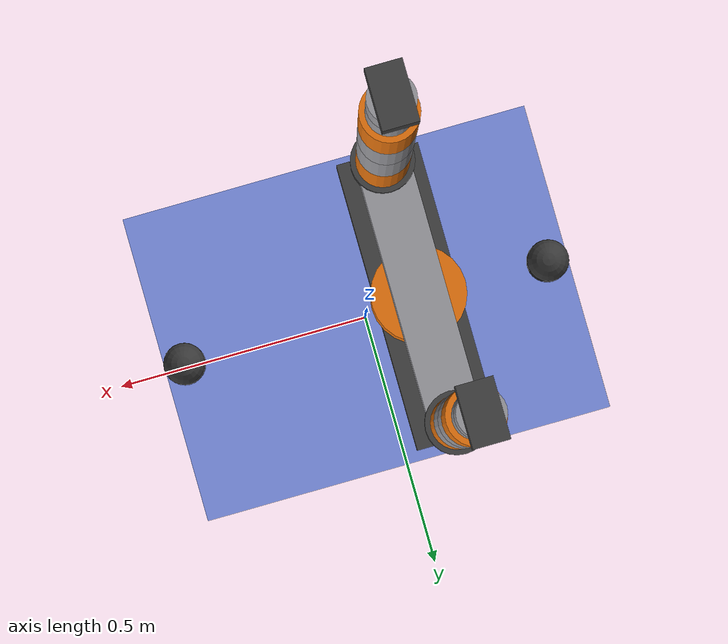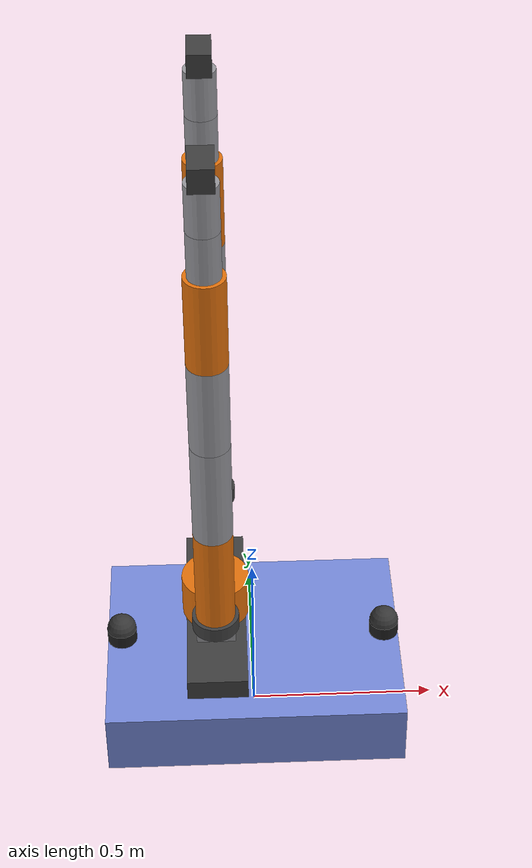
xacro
<?xml version="1.0"?>
<robot xmlns:xacro="http://www.ros.org/wiki/xacro" name="dualarm_agv">
  <!-- 组合描述:底盘宏(复用 simulated_chassis)+ 双 7 轴臂 + 2 轴腰上装 -->
  <xacro:include filename="$(find simulated_chassis)/urdf/three_wheel_chassis_3d_macro.xacro"/>
  <xacro:include filename="$(find simulated_dual_arm)/urdf/dual_arm_macro.xacro"/>
  <xacro:three_wheel_chassis_3d lidar_collisions="true"/>
  <xacro:dual_arm_rig/>
</robot>

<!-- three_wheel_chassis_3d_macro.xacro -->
<robot xmlns:xacro="http://www.ros.org/wiki/xacro">
  <!-- Shared 3D chassis, also composed by the UR5e simulation profile. -->
  <xacro:macro name="three_wheel_lidar_collision" params="">
    <collision>
      <origin xyz="0 0 0.02"/><geometry><cylinder radius="0.04" length="0.04"/></geometry>
    </collision>
    <collision>
      <origin xyz="0 0 0.04"/><geometry><sphere radius="0.04"/></geometry>
    </collision>
  </xacro:macro>
  <xacro:macro name="three_wheel_chassis_3d" params="controllers_file:='$(find simulated_chassis)/param/three_wheel_controllers.yaml' lidar_collisions:=false">

  <!-- 全局材质定义：垫柱/转向节引用的 grey 之前未定义，触发 urdf_parser 警告 -->
  <material name="grey">
    <color rgba="0.5 0.5 0.5 1.0" />
  </material>

  <!-- ==================== Base Footprint ==================== -->
  <link name="base_footprint">
  </link>

  <joint name="base_footprint_joint" type="fixed">
    <parent link="base_footprint" />
    <child link="base_link" />
    <origin xyz="0 0 0.15" rpy="0 0 0" />
  </joint>

  <!-- ==================== Base Link ==================== -->
  <link name="base_link">
    <inertial>
      <origin xyz="0 0 0" rpy="0 0 0" />
      <mass value="60.0" />
      <!-- 惯量按箱体 0.8 x 0.6 x 0.18 公式计算（Ixx=m/12*(y²+z²) 等） -->
      <inertia ixx="1.96" ixy="0.0" ixz="0.0" iyy="3.36" iyz="0.0" izz="5.0" />
    </inertial>
    <visual>
      <origin xyz="0 0 0" rpy="0 0 0" />
      <geometry>
        <box size="0.8 0.6 0.18" />
      </geometry>
      <material name="light_indigo">
        <color rgba="0.471 0.549 0.871 1.0" />
      </material>
    </visual>
    <collision>
      <origin xyz="0 0 0" rpy="0 0 0" />
      <geometry>
        <box size="0.8 0.6 0.18" />
      </geometry>
    </collision>
    <!-- 雷达安装垫柱（高1cm：底盘顶面 z=0.09 → 雷达座 z=0.10），位置随雷达外移至前后边缘 -->
    <visual>
      <origin xyz="0.36 0 0.095" rpy="0 0 0" />
      <geometry>
        <cylinder radius="0.025" length="0.01" />
      </geometry>
      <material name="grey" />
    </visual>
    <visual>
      <origin xyz="-0.36 0 0.095" rpy="0 0 0" />
      <geometry>
        <cylinder radius="0.025" length="0.01" />
      </geometry>
      <material name="grey" />
    </visual>
  </link>

  <!-- ==================== IMU ==================== -->
  <link name="imu_link">
    <inertial>
      <origin xyz="0 0 0" rpy="0 0 0" />
      <mass value="0.01" />
      <inertia ixx="0.0001" ixy="0.0" ixz="0.0" iyy="0.0001" iyz="0.0" izz="0.0001" />
    </inertial>
    <visual>
      <origin xyz="0 0 0" rpy="0 0 0" />
      <geometry>
        <box size="0.04 0.04 0.02" />
      </geometry>
      <material name="purple">
        <color rgba="0.8 0.0 0.8 1.0" />
      </material>
    </visual>
  </link>

  <joint name="imu_joint" type="fixed">
    <parent link="base_link" />
    <child link="imu_link" />
    <origin xyz="0 0 0" rpy="0 0 0" />
  </joint>

  <!-- ==================== 3D Lidar 双雷达（前+后，Mid-360 仿真） ==================== -->
  <!-- 雷达经1cm垫柱安装在底盘顶面（雷达座 z=0.10，世界高度0.25），并外移至前后边缘：
       底座半径0.04，中心取±0.36 使外沿与底盘边缘(±0.4)对齐，
       前后向俯角射线出射即越过底盘边缘；侧向>约2°的俯角射线会打在自家底盘上，
       机身两侧近处存在小范围盲区 -->
  <!-- 前雷达：底盘前边缘，前倾5°(rpy.pitch=+0.0873，顶部向前) -->
  <link name="front_lidar_link">
    <xacro:if value="${lidar_collisions}"><xacro:three_wheel_lidar_collision/></xacro:if>
    <inertial>
      <origin xyz="0 0 0" rpy="0 0 0" />
      <mass value="0.2" />
      <inertia ixx="0.001" ixy="0.0" ixz="0.0" iyy="0.001" iyz="0.0" izz="0.001" />
    </inertial>
    <!-- 半球穹顶雷达外形：底座圆柱 + 球体(下半埋入底座，只露上半球)，仿 Mid-360 -->
    <visual>
      <origin xyz="0 0 0.02" rpy="0 0 0" />
      <geometry>
        <cylinder radius="0.04" length="0.04" />
      </geometry>
      <material name="lidar_base">
        <color rgba="0.12 0.12 0.12 1.0" />
      </material>
    </visual>
    <visual>
      <origin xyz="0 0 0.04" rpy="0 0 0" />
      <geometry>
        <sphere radius="0.04" />
      </geometry>
      <material name="lidar_dome">
        <color rgba="0.22 0.22 0.22 1.0" />
      </material>
    </visual>
  </link>

  <joint name="front_lidar_joint" type="fixed">
    <parent link="base_link" />
    <child link="front_lidar_link" />
    <origin xyz="0.36 0 0.10" rpy="0 0 0" />
  </joint>

  <!-- 后雷达：底盘后边缘，朝后(yaw=π)+后倾5° → 覆盖机器人正后方 -->
  <link name="rear_lidar_link">
    <xacro:if value="${lidar_collisions}"><xacro:three_wheel_lidar_collision/></xacro:if>
    <inertial>
      <origin xyz="0 0 0" rpy="0 0 0" />
      <mass value="0.2" />
      <inertia ixx="0.001" ixy="0.0" ixz="0.0" iyy="0.001" iyz="0.0" izz="0.001" />
    </inertial>
    <!-- 半球穹顶雷达外形：底座圆柱 + 球体(下半埋入底座，只露上半球)，仿 Mid-360 -->
    <visual>
      <origin xyz="0 0 0.02" rpy="0 0 0" />
      <geometry>
        <cylinder radius="0.04" length="0.04" />
      </geometry>
      <material name="lidar_base">
        <color rgba="0.12 0.12 0.12 1.0" />
      </material>
    </visual>
    <visual>
      <origin xyz="0 0 0.04" rpy="0 0 0" />
      <geometry>
        <sphere radius="0.04" />
      </geometry>
      <material name="lidar_dome">
        <color rgba="0.22 0.22 0.22 1.0" />
      </material>
    </visual>
  </link>

  <joint name="rear_lidar_joint" type="fixed">
    <parent link="base_link" />
    <child link="rear_lidar_link" />
    <origin xyz="-0.36 0 0.10" rpy="0 0 3.1416" />
  </joint>

  <!-- ==================== Front Steering Module ==================== -->
  <link name="wheel_front_steering_link">
    <inertial>
      <origin xyz="0 0 0" rpy="0 0 0" />
      <mass value="1.5" />
      <inertia ixx="0.0045" ixy="0.0" ixz="0.0" iyy="0.0045" iyz="0.0" izz="0.0075" />
    </inertial>
    <visual>
      <origin xyz="0 0 0" rpy="0 0 0" />
      <geometry>
        <cylinder radius="0.03" length="0.06" />
      </geometry>
      <material name="grey">
        <color rgba="0.5 0.5 0.5 1.0" />
      </material>
    </visual>
  </link>

  <joint name="wheel_front_steering_joint" type="revolute">
    <parent link="base_link" />
    <child link="wheel_front_steering_link" />
    <origin xyz="0.3 0.0 -0.05" rpy="0 0 0" />
    <axis xyz="0 0 1" />
    <limit lower="-1.5708" upper="1.5708" effort="100.0" velocity="5.0" />
  </joint>

  <link name="wheel_front_wheel_link">
    <inertial>
      <origin xyz="0 0 0" rpy="0 0 0" />
      <mass value="3.0" />
      <inertia ixx="0.0091" ixy="0.0" ixz="0.0" iyy="0.0091" iyz="0.0" izz="0.015" />
    </inertial>
    <visual>
      <origin xyz="0 0 0" rpy="1.5708 0 0" />
      <geometry>
        <cylinder radius="0.1" length="0.08" />
      </geometry>
      <material name="orange_wheel">
        <color rgba="1.0 0.35 0.0 1.0" />
      </material>
    </visual>
    <collision>
      <origin xyz="0 0 0" rpy="1.5708 0 0" />
      <geometry>
        <cylinder radius="0.1" length="0.08" />
      </geometry>
    </collision>
  </link>

  <joint name="wheel_front_wheel_joint" type="revolute">
    <parent link="wheel_front_steering_link" />
    <child link="wheel_front_wheel_link" />
    <origin xyz="0.0 0.0 0.0" rpy="0 0 0" />
    <axis xyz="0 1 0" />
    <limit lower="-1e9" upper="1e9" effort="10.0" velocity="18.0" />
  </joint>

  <!-- ==================== Left Steering Module ==================== -->
  <link name="wheel_left_steering_link">
    <inertial>
      <origin xyz="0 0 0" rpy="0 0 0" />
      <mass value="1.5" />
      <inertia ixx="0.0045" ixy="0.0" ixz="0.0" iyy="0.0045" iyz="0.0" izz="0.0075" />
    </inertial>
    <visual>
      <origin xyz="0 0 0" rpy="0 0 0" />
      <geometry>
        <cylinder radius="0.03" length="0.06" />
      </geometry>
      <material name="grey" />
    </visual>
  </link>

  <joint name="wheel_left_steering_joint" type="revolute">
    <parent link="base_link" />
    <child link="wheel_left_steering_link" />
    <origin xyz="-0.15 0.20 -0.05" rpy="0 0 0" />
    <axis xyz="0 0 1" />
    <limit lower="-1.5708" upper="1.5708" effort="100.0" velocity="5.0" />
  </joint>

  <link name="wheel_left_wheel_link">
    <inertial>
      <origin xyz="0 0 0" rpy="0 0 0" />
      <mass value="3.0" />
      <inertia ixx="0.0091" ixy="0.0" ixz="0.0" iyy="0.0091" iyz="0.0" izz="0.015" />
    </inertial>
    <visual>
      <origin xyz="0 0 0" rpy="1.5708 0 0" />
      <geometry>
        <cylinder radius="0.1" length="0.08" />
      </geometry>
      <material name="orange_wheel">
        <color rgba="1.0 0.35 0.0 1.0" />
      </material>
    </visual>
    <collision>
      <origin xyz="0 0 0" rpy="1.5708 0 0" />
      <geometry>
        <cylinder radius="0.1" length="0.08" />
      </geometry>
    </collision>
  </link>

  <joint name="wheel_left_wheel_joint" type="revolute">
    <parent link="wheel_left_steering_link" />
    <child link="wheel_left_wheel_link" />
    <origin xyz="0.0 0.0 0.0" rpy="0 0 0" />
    <axis xyz="0 1 0" />
    <limit lower="-1e9" upper="1e9" effort="10.0" velocity="18.0" />
  </joint>

  <!-- ==================== Right Steering Module ==================== -->
  <link name="wheel_right_steering_link">
    <inertial>
      <origin xyz="0 0 0" rpy="0 0 0" />
      <mass value="1.5" />
      <inertia ixx="0.0045" ixy="0.0" ixz="0.0" iyy="0.0045" iyz="0.0" izz="0.0075" />
    </inertial>
    <visual>
      <origin xyz="0 0 0" rpy="0 0 0" />
      <geometry>
        <cylinder radius="0.03" length="0.06" />
      </geometry>
      <material name="grey" />
    </visual>
  </link>

  <joint name="wheel_right_steering_joint" type="revolute">
    <parent link="base_link" />
    <child link="wheel_right_steering_link" />
    <origin xyz="-0.15 -0.20 -0.05" rpy="0 0 0" />
    <axis xyz="0 0 1" />
    <limit lower="-1.5708" upper="1.5708" effort="100.0" velocity="5.0" />
  </joint>

  <link name="wheel_right_wheel_link">
    <inertial>
      <origin xyz="0 0 0" rpy="0 0 0" />
      <mass value="3.0" />
      <inertia ixx="0.0091" ixy="0.0" ixz="0.0" iyy="0.0091" iyz="0.0" izz="0.015" />
    </inertial>
    <visual>
      <origin xyz="0 0 0" rpy="1.5708 0 0" />
      <geometry>
        <cylinder radius="0.1" length="0.08" />
      </geometry>
      <material name="orange_wheel">
        <color rgba="1.0 0.35 0.0 1.0" />
      </material>
    </visual>
    <collision>
      <origin xyz="0 0 0" rpy="1.5708 0 0" />
      <geometry>
        <cylinder radius="0.1" length="0.08" />
      </geometry>
    </collision>
  </link>

  <joint name="wheel_right_wheel_joint" type="revolute">
    <parent link="wheel_right_steering_link" />
    <child link="wheel_right_wheel_link" />
    <origin xyz="0.0 0.0 0.0" rpy="0 0 0" />
    <axis xyz="0 1 0" />
    <limit lower="-1e9" upper="1e9" effort="10.0" velocity="18.0" />
  </joint>

  <!-- ==================== ros2_control ==================== -->
  <ros2_control name="IgnitionSystem" type="system">
    <hardware>
      <plugin>ign_ros2_control/IgnitionSystem</plugin>
    </hardware>
    <joint name="wheel_front_steering_joint">
      <command_interface name="position" />
      <state_interface name="position" />
      <state_interface name="velocity" />
    </joint>
    <joint name="wheel_left_steering_joint">
      <command_interface name="position" />
      <state_interface name="position" />
      <state_interface name="velocity" />
    </joint>
    <joint name="wheel_right_steering_joint">
      <command_interface name="position" />
      <state_interface name="position" />
      <state_interface name="velocity" />
    </joint>
    <joint name="wheel_front_wheel_joint">
      <command_interface name="velocity" />
      <state_interface name="position" />
      <state_interface name="velocity" />
    </joint>
    <joint name="wheel_left_wheel_joint">
      <command_interface name="velocity" />
      <state_interface name="position" />
      <state_interface name="velocity" />
    </joint>
    <joint name="wheel_right_wheel_joint">
      <command_interface name="velocity" />
      <state_interface name="position" />
      <state_interface name="velocity" />
    </joint>
  </ros2_control>

  <!-- ==================== Gazebo Plugins ==================== -->
  <gazebo>
    <plugin filename="ign_ros2_control-system" name="ign_ros2_control::IgnitionROS2ControlPlugin">
      <parameters>${controllers_file}</parameters>
      <robot_param>robot_description</robot_param>
      <robot_param_node>robot_state_publisher</robot_param_node>
    </plugin>
    <plugin filename="ignition-gazebo-sensors-system" name="ignition::gazebo::systems::Sensors">
    </plugin>
    <plugin name="ignition::gazebo::systems::Imu" filename="ignition-gazebo-imu-system"></plugin>
  </gazebo>

  <!-- ==================== IMU Sensor ==================== -->
  <gazebo reference="imu_link">
    <sensor name="imu_sensor" type="imu">
      <always_on>true</always_on>
      <update_rate>100</update_rate>
      <visualize>false</visualize>
      <topic>/imu</topic>
      <ignition_frame_id>imu_link</ignition_frame_id>

      <imu>
        <frame_id>imu_link</frame_id>

        <!-- 角速度：白噪声密度约 0.01°/s/√Hz，
           100Hz 下每采样 σ≈0.001 rad/s (0.057°/s)；
           上电零偏 σ≈0.002°/s (3.5e-5 rad/s)；
           零偏随机游走 10°/hr，相关时间 1000s -->
        <angular_velocity>
          <x>
            <noise type="gaussian">
              <mean>0.0</mean>
              <stddev>0.001</stddev>
              <bias_mean>0.0</bias_mean>
              <bias_stddev>0.00005</bias_stddev>
              <dynamic_bias_stddev>0.00005</dynamic_bias_stddev>
              <dynamic_bias_correlation_time>1000.0</dynamic_bias_correlation_time>
            </noise>
          </x>
          <y>
            <noise type="gaussian">
              <mean>0.0</mean>
              <stddev>0.001</stddev>
              <bias_mean>0.0</bias_mean>
              <bias_stddev>0.00005</bias_stddev>
              <dynamic_bias_stddev>0.00005</dynamic_bias_stddev>
              <dynamic_bias_correlation_time>1000.0</dynamic_bias_correlation_time>
            </noise>
          </y>
          <z>
            <noise type="gaussian">
              <mean>0.0</mean>
              <stddev>0.001</stddev>
              <bias_mean>0.0</bias_mean>
              <bias_stddev>0.00005</bias_stddev>
              <dynamic_bias_stddev>0.00005</dynamic_bias_stddev>
              <dynamic_bias_correlation_time>1000.0</dynamic_bias_correlation_time>
            </noise>
          </z>
        </angular_velocity>

        <!-- 线加速度：白噪声密度约 60µg/√Hz，
           100Hz 下每采样 σ≈0.0006 m/s²；
           上电零偏 σ≈0.00015 m/s² (15µg)；
           零偏随机游走 0.05mg，相关时间 1000s -->
        <linear_acceleration>
          <x>
            <noise type="gaussian">
              <mean>0.0</mean>
              <stddev>0.0006</stddev>
              <bias_mean>0.0</bias_mean>
              <bias_stddev>0.00015</bias_stddev>
              <dynamic_bias_stddev>0.0002</dynamic_bias_stddev>
              <dynamic_bias_correlation_time>1000.0</dynamic_bias_correlation_time>
            </noise>
          </x>
          <y>
            <noise type="gaussian">
              <mean>0.0</mean>
              <stddev>0.0006</stddev>
              <bias_mean>0.0</bias_mean>
              <bias_stddev>0.00015</bias_stddev>
              <dynamic_bias_stddev>0.0002</dynamic_bias_stddev>
              <dynamic_bias_correlation_time>1000.0</dynamic_bias_correlation_time>
            </noise>
          </y>
          <z>
            <noise type="gaussian">
              <mean>0.0</mean>
              <stddev>0.0006</stddev>
              <bias_mean>0.0</bias_mean>
              <bias_stddev>0.00015</bias_stddev>
              <dynamic_bias_stddev>0.0002</dynamic_bias_stddev>
              <dynamic_bias_correlation_time>1000.0</dynamic_bias_correlation_time>
            </noise>
          </z>
        </linear_acceleration>
      </imu>
    </sensor>
  </gazebo>

  <!-- ==================== 双 3D Lidar Sensor (Mid-360 仿真) ==================== -->
  <!-- 前雷达 -->
  <gazebo reference="front_lidar_link">
    <sensor name="front_lidar_sensor" type="gpu_lidar">
      <always_on>true</always_on>
      <update_rate>15</update_rate>
      <visualize>true</visualize>
      <topic>/front_lidar/point_cloud</topic>
      <ignition_frame_id>front_lidar_link</ignition_frame_id>

      <lidar>
        <frame_id>front_lidar_link</frame_id>
        <scan>
          <horizontal>
            <samples>270</samples>
            <resolution>1</resolution>
            <min_angle>-2.35619</min_angle>
            <max_angle>2.35619</max_angle>
          </horizontal>
          <!-- 对齐 zioneer 差速版：下沿 -10°。原 -25° 俯角射线会打在自己底盘前边缘
               （雷达在边缘内 4cm、甲板仅低 1cm，≥14° 俯角即自打），眼前出现幻影障碍
               导致导航减速。-10° 时打中甲板需 ≥27°，几何上不可能自打。 -->
          <vertical>
            <samples>16</samples>
            <min_angle>-0.1745</min_angle>
            <max_angle>0.349</max_angle>
          </vertical>
        </scan>
        <range>
          <min>0.5</min>
          <max>30.0</max>
          <resolution>0.01</resolution>
        </range>
        <noise>
          <type>gaussian</type>
          <mean>0.0</mean>
          <bias_mean>0.0</bias_mean>
          <bias_stddev>0.0005</bias_stddev>
          <precision>0.01</precision>
          <stddev>0.002</stddev>
        </noise>
      </lidar>
    </sensor>
  </gazebo>

  <!-- 后雷达 -->
  <gazebo reference="rear_lidar_link">
    <sensor name="rear_lidar_sensor" type="gpu_lidar">
      <always_on>true</always_on>
      <update_rate>15</update_rate>
      <visualize>true</visualize>
      <topic>/rear_lidar/point_cloud</topic>
      <ignition_frame_id>rear_lidar_link</ignition_frame_id>

      <lidar>
        <frame_id>rear_lidar_link</frame_id>
        <scan>
          <horizontal>
            <samples>270</samples>
            <resolution>1</resolution>
            <min_angle>-2.35619</min_angle>
            <max_angle>2.35619</max_angle>
          </horizontal>
          <!-- 对齐 zioneer 差速版：下沿 -10°，杜绝俯角射线自打底盘边缘 -->
          <vertical>
            <samples>16</samples>
            <min_angle>-0.1745</min_angle>
            <max_angle>0.349</max_angle>
          </vertical>
        </scan>
        <range>
          <min>0.5</min>
          <max>30.0</max>
          <resolution>0.01</resolution>
        </range>
        <noise>
          <type>gaussian</type>
          <mean>0.0</mean>
          <bias_mean>0.0</bias_mean>
          <bias_stddev>0.0005</bias_stddev>
          <precision>0.01</precision>
          <stddev>0.002</stddev>
        </noise>
      </lidar>
    </sensor>
  </gazebo>

  <!-- 在 robot 标签的末尾，为每个车轮的 link 指定摩擦参数 -->
  <gazebo reference="wheel_front_wheel_link">
    <surface>
      <friction>
        <ode>
          <mu>0.8</mu>
          <mu2>0.6</mu2>
        </ode>
      </friction>
    </surface>
  </gazebo>

  <gazebo reference="wheel_left_wheel_link">
    <surface>
      <friction>
        <ode>
          <mu>0.8</mu>
          <mu2>0.6</mu2>
        </ode>
      </friction>
    </surface>
  </gazebo>

  <gazebo reference="wheel_right_wheel_link">
    <surface>
      <friction>
        <ode>
          <mu>0.8</mu>
          <mu2>0.6</mu2>
        </ode>
      </friction>
    </surface>
  </gazebo>

  </xacro:macro>
</robot>

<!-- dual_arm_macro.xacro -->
<robot xmlns:xacro="http://www.ros.org/wiki/xacro" name="dual_arm_rig">

  <xacro:macro name="dual_arm_7dof" params="side y_mount">
    <!-- side: left / right;y_mount: ±0.25 -->
    <xacro:property name="r" value="0.05"/>
    <xacro:property name="l1" value="0.28"/>
    <xacro:property name="l2" value="0.24"/>
    <xacro:property name="l3" value="0.12"/>

    <link name="arm_${side}_base_link">
      <inertial>
        <origin xyz="0 0 0.02"/>
        <mass value="2.0"/>
        <inertia ixx="0.004" ixy="0" ixz="0" iyy="0.004" iyz="0" izz="0.004"/>
      </inertial>
      <visual>
        <origin xyz="0 0 0.02"/>
        <geometry><cylinder radius="${r+0.01}" length="0.04"/></geometry>
        <material name="dark_grey"/>
      </visual>
      <collision>
        <origin xyz="0 0 0.02"/>
        <geometry><cylinder radius="${r+0.01}" length="0.04"/></geometry>
      </collision>
    </link>
    <joint name="arm_${side}_mount_joint" type="fixed">
      <parent link="waist_link_2"/>
      <child link="arm_${side}_base_link"/>
      <origin xyz="0 ${y_mount} 0.06" rpy="0 0 0"/>
    </joint>

    <!-- j1 肩部回转(z) -->
    <link name="arm_${side}_link_1">
      <inertial>
        <origin xyz="0 0 ${l1/2}"/>
        <mass value="1.5"/>
        <inertia ixx="0.01" ixy="0" ixz="0" iyy="0.01" iyz="0" izz="0.004"/>
      </inertial>
      <visual>
        <origin xyz="0 0 ${l1/2}"/>
        <geometry><cylinder radius="${r}" length="${l1}"/></geometry>
        <material name="arm_orange"/>
      </visual>
      <collision>
        <origin xyz="0 0 ${l1/2}"/>
        <geometry><cylinder radius="${r}" length="${l1}"/></geometry>
      </collision>
    </link>
    <joint name="arm_${side}_joint_1" type="revolute">
      <parent link="arm_${side}_base_link"/>
      <child link="arm_${side}_link_1"/>
      <origin xyz="0 0 0.04" rpy="0 0 0"/>
      <axis xyz="0 0 1"/>
      <limit lower="-2.8" upper="2.8" effort="50" velocity="2.0"/>
      <dynamics damping="1000" friction="1000"/>
    </joint>

    <!-- j2 肩部俯仰(y) -->
    <link name="arm_${side}_link_2">
      <inertial>
        <origin xyz="0 0 ${l1/2}"/>
        <mass value="1.2"/>
        <inertia ixx="0.008" ixy="0" ixz="0" iyy="0.008" iyz="0" izz="0.003"/>
      </inertial>
      <visual>
        <origin xyz="0 0 ${l1/2}"/>
        <geometry><cylinder radius="${r}" length="${l1}"/></geometry>
        <material name="arm_grey"/>
      </visual>
      <collision>
        <origin xyz="0 0 ${l1/2}"/>
        <geometry><cylinder radius="${r}" length="${l1}"/></geometry>
      </collision>
    </link>
    <joint name="arm_${side}_joint_2" type="revolute">
      <parent link="arm_${side}_link_1"/>
      <child link="arm_${side}_link_2"/>
      <origin xyz="0 0 ${l1}" rpy="0 0 0"/>
      <axis xyz="0 1 0"/>
      <limit lower="-2.4" upper="2.4" effort="50" velocity="2.0"/>
      <dynamics damping="1000" friction="1000"/>
    </joint>

    <!-- j3 上臂回转(x,第 7 自由度) -->
    <link name="arm_${side}_link_3">
      <inertial>
        <origin xyz="0 0 ${l2/2}"/>
        <mass value="1.0"/>
        <inertia ixx="0.005" ixy="0" ixz="0" iyy="0.005" iyz="0" izz="0.002"/>
      </inertial>
      <visual>
        <origin xyz="0 0 ${l2/2}"/>
        <geometry><cylinder radius="${r}" length="${l2}"/></geometry>
        <material name="arm_grey"/>
      </visual>
      <collision>
        <origin xyz="0 0 ${l2/2}"/>
        <geometry><cylinder radius="${r}" length="${l2}"/></geometry>
      </collision>
    </link>
    <joint name="arm_${side}_joint_3" type="revolute">
      <parent link="arm_${side}_link_2"/>
      <child link="arm_${side}_link_3"/>
      <origin xyz="0 0 ${l1}" rpy="0 0 0"/>
      <axis xyz="1 0 0"/>
      <limit lower="-2.8" upper="2.8" effort="30" velocity="2.0"/>
      <dynamics damping="500" friction="500"/>
    </joint>

    <!-- j4 肘部俯仰(y) -->
    <link name="arm_${side}_link_4">
      <inertial>
        <origin xyz="0 0 ${l2/2}"/>
        <mass value="0.9"/>
        <inertia ixx="0.004" ixy="0" ixz="0" iyy="0.004" iyz="0" izz="0.002"/>
      </inertial>
      <visual>
        <origin xyz="0 0 ${l2/2}"/>
        <geometry><cylinder radius="${r}" length="${l2}"/></geometry>
        <material name="arm_orange"/>
      </visual>
      <collision>
        <origin xyz="0 0 ${l2/2}"/>
        <geometry><cylinder radius="${r}" length="${l2}"/></geometry>
      </collision>
    </link>
    <joint name="arm_${side}_joint_4" type="revolute">
      <parent link="arm_${side}_link_3"/>
      <child link="arm_${side}_link_4"/>
      <origin xyz="0 0 ${l2}" rpy="0 0 0"/>
      <axis xyz="0 1 0"/>
      <limit lower="-2.6" upper="2.6" effort="30" velocity="2.0"/>
      <dynamics damping="500" friction="500"/>
    </joint>

    <!-- j5 腕部俯仰(y) -->
    <link name="arm_${side}_link_5">
      <inertial>
        <origin xyz="0 0 ${l3/2}"/>
        <mass value="0.5"/>
        <inertia ixx="0.001" ixy="0" ixz="0" iyy="0.001" iyz="0" izz="0.0005"/>
      </inertial>
      <visual>
        <origin xyz="0 0 ${l3/2}"/>
        <geometry><cylinder radius="${r*0.8}" length="${l3}"/></geometry>
        <material name="arm_grey"/>
      </visual>
      <collision>
        <origin xyz="0 0 ${l3/2}"/>
        <geometry><cylinder radius="${r*0.8}" length="${l3}"/></geometry>
      </collision>
    </link>
    <joint name="arm_${side}_joint_5" type="revolute">
      <parent link="arm_${side}_link_4"/>
      <child link="arm_${side}_link_5"/>
      <origin xyz="0 0 ${l2}" rpy="0 0 0"/>
      <axis xyz="0 1 0"/>
      <limit lower="-2.4" upper="2.4" effort="20" velocity="2.5"/>
      <dynamics damping="200" friction="200"/>
    </joint>

    <!-- j6 腕部回转(z) -->
    <link name="arm_${side}_link_6">
      <inertial>
        <origin xyz="0 0 ${l3/2}"/>
        <mass value="0.4"/>
        <inertia ixx="0.0008" ixy="0" ixz="0" iyy="0.0008" iyz="0" izz="0.0004"/>
      </inertial>
      <visual>
        <origin xyz="0 0 ${l3/2}"/>
        <geometry><cylinder radius="${r*0.8}" length="${l3}"/></geometry>
        <material name="arm_grey"/>
      </visual>
      <collision>
        <origin xyz="0 0 ${l3/2}"/>
        <geometry><cylinder radius="${r*0.8}" length="${l3}"/></geometry>
      </collision>
    </link>
    <joint name="arm_${side}_joint_6" type="revolute">
      <parent link="arm_${side}_link_5"/>
      <child link="arm_${side}_link_6"/>
      <origin xyz="0 0 ${l3}" rpy="0 0 0"/>
      <axis xyz="0 0 1"/>
      <limit lower="-2.8" upper="2.8" effort="20" velocity="2.5"/>
      <dynamics damping="200" friction="200"/>
    </joint>

    <!-- j7 法兰回转(x) + 末端工具示意 -->
    <link name="arm_${side}_link_7">
      <inertial>
        <origin xyz="0 0 0.03"/>
        <mass value="0.3"/>
        <inertia ixx="0.0003" ixy="0" ixz="0" iyy="0.0003" iyz="0" izz="0.0003"/>
      </inertial>
      <visual>
        <origin xyz="0 0 0.03"/>
        <geometry><box size="0.06 0.1 0.06"/></geometry>
        <material name="dark_grey"/>
      </visual>
      <collision>
        <origin xyz="0 0 0.03"/>
        <geometry><box size="0.06 0.1 0.06"/></geometry>
      </collision>
    </link>
    <joint name="arm_${side}_joint_7" type="revolute">
      <parent link="arm_${side}_link_6"/>
      <child link="arm_${side}_link_7"/>
      <origin xyz="0 0 ${l3}" rpy="0 0 0"/>
      <axis xyz="1 0 0"/>
      <limit lower="-3.14" upper="3.14" effort="10" velocity="3.0"/>
      <dynamics damping="100" friction="100"/>
    </joint>
  </xacro:macro>

  <xacro:macro name="dual_arm_rig" params="">
    <!-- 安装座:base_link 上方(默认安装位,待整机图纸替换) -->
    <link name="waist_mount_link">
      <inertial>
        <origin xyz="0 0 0.03"/>
        <mass value="3.0"/>
        <inertia ixx="0.01" ixy="0" ixz="0" iyy="0.01" iyz="0" izz="0.01"/>
      </inertial>
      <visual>
        <origin xyz="0 0 0.03"/>
        <geometry><box size="0.16 0.56 0.06"/></geometry>
        <material name="dark_grey"/>
      </visual>
      <collision>
        <origin xyz="0 0 0.03"/>
        <geometry><box size="0.16 0.56 0.06"/></geometry>
      </collision>
    </link>
    <joint name="waist_mount_joint" type="fixed">
      <parent link="base_link"/>
      <child link="waist_mount_link"/>
      <origin xyz="-0.1 0 0.15" rpy="0 0 0"/>
    </joint>

    <!-- 腰 1:回转(z) -->
    <link name="waist_link_1">
      <inertial>
        <origin xyz="0 0 0.06"/>
        <mass value="4.0"/>
        <inertia ixx="0.02" ixy="0" ixz="0" iyy="0.02" iyz="0" izz="0.02"/>
      </inertial>
      <visual>
        <origin xyz="0 0 0.06"/>
        <geometry><cylinder radius="0.09" length="0.12"/></geometry>
        <material name="arm_orange"/>
      </visual>
      <collision>
        <origin xyz="0 0 0.06"/>
        <geometry><cylinder radius="0.09" length="0.12"/></geometry>
      </collision>
    </link>
    <joint name="waist_joint_1" type="revolute">
      <parent link="waist_mount_link"/>
      <child link="waist_link_1"/>
      <origin xyz="0 0 0.06" rpy="0 0 0"/>
      <axis xyz="0 0 1"/>
      <limit lower="-2.8" upper="2.8" effort="100" velocity="1.5"/>
      <dynamics damping="2000" friction="2000"/>
    </joint>

    <!-- 腰 2:俯仰(y) -->
    <link name="waist_link_2">
      <inertial>
        <origin xyz="0 0 0.04"/>
        <mass value="3.0"/>
        <inertia ixx="0.015" ixy="0" ixz="0" iyy="0.015" iyz="0" izz="0.03"/>
      </inertial>
      <visual>
        <origin xyz="0 0 0.04"/>
        <geometry><box size="0.1 0.5 0.08"/></geometry>
        <material name="arm_grey"/>
      </visual>
      <collision>
        <origin xyz="0 0 0.04"/>
        <geometry><box size="0.1 0.5 0.08"/></geometry>
      </collision>
    </link>
    <joint name="waist_joint_2" type="revolute">
      <parent link="waist_link_1"/>
      <child link="waist_link_2"/>
      <origin xyz="0 0 0.12" rpy="0 0 0"/>
      <axis xyz="0 1 0"/>
      <limit lower="-0.6" upper="0.6" effort="100" velocity="1.5"/>
      <dynamics damping="2000" friction="2000"/>
    </joint>

    <xacro:dual_arm_7dof side="left" y_mount="0.25"/>
    <xacro:dual_arm_7dof side="right" y_mount="-0.25"/>

    <!-- 材质定义(视觉级配色,与底盘 grey 区分) -->
    <material name="dark_grey">
      <color rgba="0.25 0.25 0.25 1.0"/>
    </material>
    <material name="arm_grey">
      <color rgba="0.6 0.6 0.62 1.0"/>
    </material>
    <material name="arm_orange">
      <color rgba="0.9 0.45 0.05 1.0"/>
    </material>
  </xacro:macro>
</robot>
